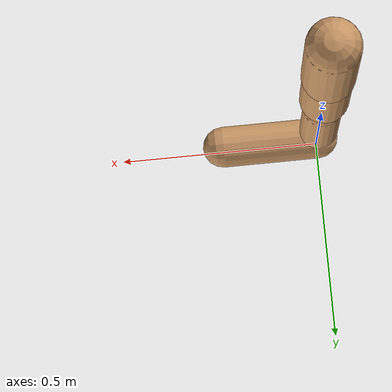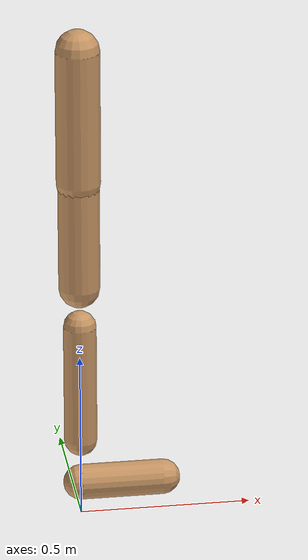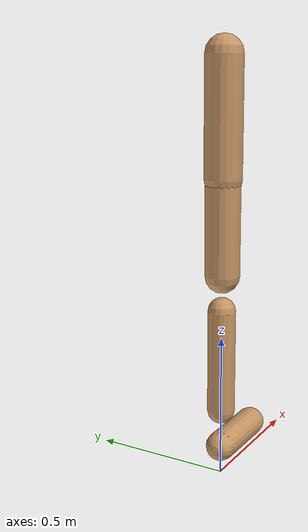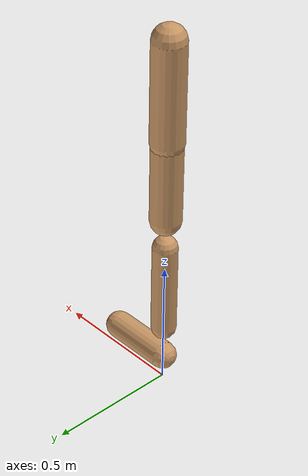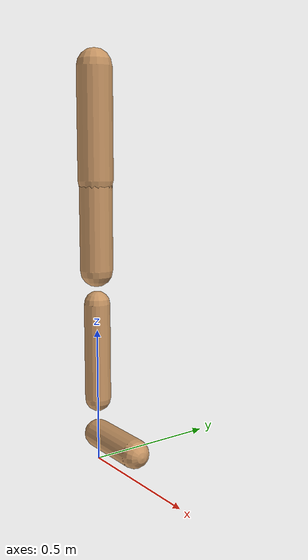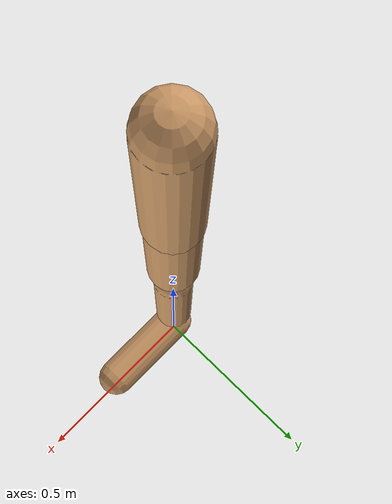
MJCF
<mujoco model="walker2d">
  <compiler angle="degree" coordinate="global" inertiafromgeom="true" />
  <default>
    <joint armature="0.01" damping=".1" limited="true" />
    <geom conaffinity="0" condim="3" contype="1" density="1000" friction="0.8 .1 .1" rgba="0.8 0.6 .4 1" />
  </default>
  <option integrator="RK4" timestep="0.002" />
  <worldbody>

    <body name="torso" pos="0 0 -0.26393152661042224">
      <joint armature="0" axis="1 0 0" damping="0" limited="false" name="ignorex" pos="0 0 0" stiffness="0" type="slide" />
      <joint armature="0" axis="0 0 1" damping="0" limited="false" name="ignorez" pos="0 0 0" ref="1.25" stiffness="0" type="slide" />
      <joint armature="0" axis="0 1 0" damping="0" limited="false" name="ignorey" pos="0 0 0" stiffness="0" type="hinge" />
      <geom fromto="0 0 1.45 0 0 1.05" name="torso_geom" size="0.06448200468625245" type="capsule" />
      <body name="thigh">
        <joint axis="0 -1 0" name="thigh_joint" pos="0 0 1.05" range="-150 0" type="hinge" />
        <geom fromto="0.0 0.0 1.05 0.0 0.0 0.7250201968154631" name="thigh_geom" size="0.0603481383811941" type="capsule" />
        <body name="leg" pos="0.0 0.0 0.12502019681546317">
          <joint axis="0 -1 0" name="leg_joint" pos="0 0 0.6" range="-150 0" type="hinge" />
          <geom fromto="0.0 0.0 0.6 0.0 0.0 0.23891132979495908" name="leg_geom" size="0.04827851070495528" type="capsule" />
          <body name="foot" pos="0.0 0.0 0.13891132979495907">
            <joint axis="0 -1 0" name="foot_joint" pos="0 0 0.1" range="-45 45" type="hinge" />
            <geom fromto="-0.0 0.0 0.1 0.24073451617537323 0.0 0.1" name="foot_geom" size="0.05221007708917154" type="capsule" />
          </body>
        </body>
      </body>

      <body name="thigh_left">
        <joint axis="0 -1 0" name="thigh_left_joint" pos="0 0 1.05" range="-150 0" type="hinge" />
        <geom fromto="0.0 0.0 1.05 0.0 0.0 0.7250201968154631" name="thigh_left_geom" rgba=".7 .3 .6 1" size="0.0603481383811941" type="capsule" />
        <body name="leg_left" pos="0.0 0.0 0.12502019681546317">
          <joint axis="0 -1 0" name="leg_left_joint" pos="0 0 0.6" range="-150 0" type="hinge" />
          <geom fromto="0.0 0.0 0.6 0.0 0.0 0.23891132979495908" name="leg_left_geom" rgba=".7 .3 .6 1" size="0.04827851070495528" type="capsule" />
          <body name="foot_left" pos="0.0 0.0 0.13891132979495907">
            <joint axis="0 -1 0" name="foot_left_joint" pos="0 0 0.1" range="-45 45" type="hinge" />
            <geom fromto="-0.0 0.0 0.1 0.24073451617537323 0.0 0.1" name="foot_left_geom" rgba=".7 .3 .6 1" size="0.05221007708917154" type="capsule" />
          </body>
        </body>
      </body>
    </body>
  </worldbody>
  <actuator>

    <motor ctrllimited="true" ctrlrange="-1.0 1.0" gear="100" joint="thigh_joint" />
    <motor ctrllimited="true" ctrlrange="-1.0 1.0" gear="100" joint="leg_joint" />
    <motor ctrllimited="true" ctrlrange="-1.0 1.0" gear="100" joint="foot_joint" />
    <motor ctrllimited="true" ctrlrange="-1.0 1.0" gear="100" joint="thigh_left_joint" />
    <motor ctrllimited="true" ctrlrange="-1.0 1.0" gear="100" joint="leg_left_joint" />
    <motor ctrllimited="true" ctrlrange="-1.0 1.0" gear="100" joint="foot_left_joint" />

  </actuator>
</mujoco>
